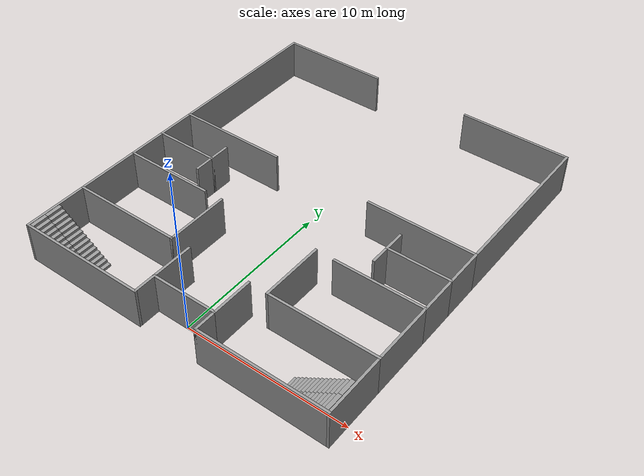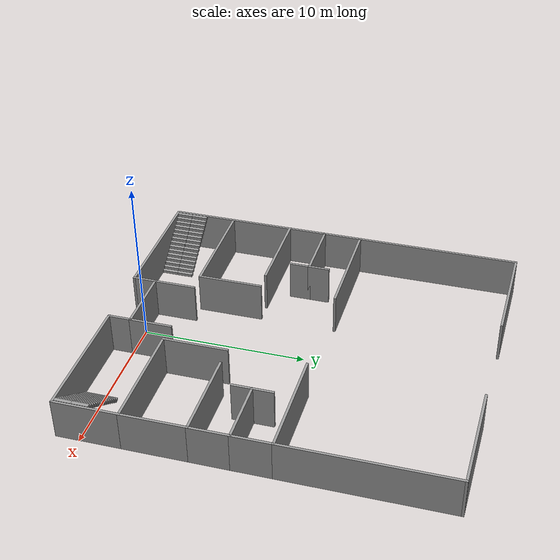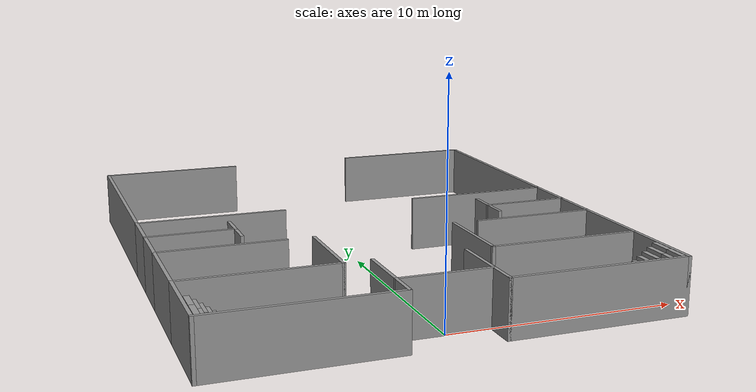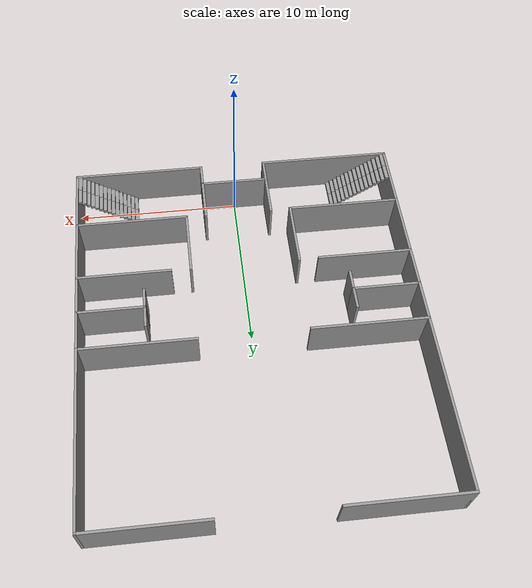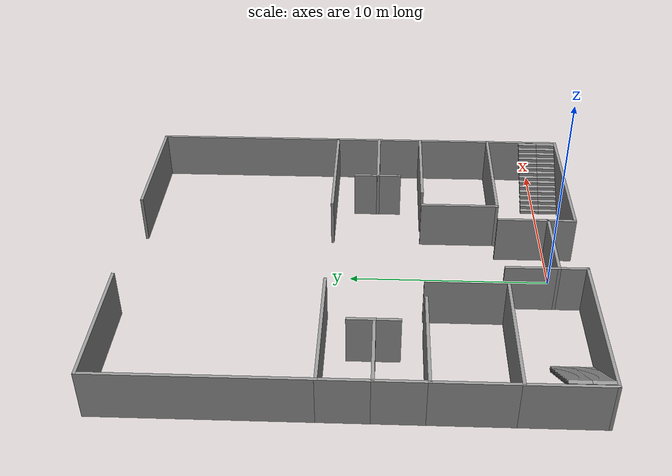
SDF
<sdf version="1.6">
 <model name="hospital">
  <pose>0 9.85 0 0 -0 0</pose>
  <link name="Stairs_0">
   <visual name="Stairs_0_Visual_0">
    <pose>-6.37478 -10.6397 0.083333 0 -0 -1.5708</pose>
    <geometry><box><size>1 0.233333 0.166667</size></box></geometry>
    <material>
     <script><uri>file://media/materials/scripts/gazebo.material</uri><name>Gazebo/Grey</name></script>
     <ambient>1 1 1 1</ambient>
    </material>
    <meta><layer>0</layer></meta>
   </visual>
   <collision name="Stairs_0_Collision_0">
    <geometry><box><size>1 0.233333 0.166667</size></box></geometry>
    <pose>-6.37478 -10.6397 0.083333 0 -0 -1.5708</pose>
   </collision>
   <visual name="Stairs_0_Visual_1">
    <pose>-6.60811 -10.6397 0.25 0 -0 -1.5708</pose>
    <geometry><box><size>1 0.233333 0.166667</size></box></geometry>
    <material>
     <script><uri>file://media/materials/scripts/gazebo.material</uri><name>Gazebo/Grey</name></script>
     <ambient>1 1 1 1</ambient>
    </material>
    <meta><layer>0</layer></meta>
   </visual>
   <collision name="Stairs_0_Collision_1">
    <geometry><box><size>1 0.233333 0.166667</size></box></geometry>
    <pose>-6.60811 -10.6397 0.25 0 -0 -1.5708</pose>
   </collision>
   <visual name="Stairs_0_Visual_2">
    <pose>-6.84145 -10.6397 0.416667 0 -0 -1.5708</pose>
    <geometry><box><size>1 0.233333 0.166667</size></box></geometry>
    <material>
     <script><uri>file://media/materials/scripts/gazebo.material</uri><name>Gazebo/Grey</name></script>
     <ambient>1 1 1 1</ambient>
    </material>
    <meta><layer>0</layer></meta>
   </visual>
   <collision name="Stairs_0_Collision_2">
    <geometry><box><size>1 0.233333 0.166667</size></box></geometry>
    <pose>-6.84145 -10.6397 0.416667 0 -0 -1.5708</pose>
   </collision>
   <visual name="Stairs_0_Visual_3">
    <pose>-7.07478 -10.6397 0.583333 0 -0 -1.5708</pose>
    <geometry><box><size>1 0.233333 0.166667</size></box></geometry>
    <material>
     <script><uri>file://media/materials/scripts/gazebo.material</uri><name>Gazebo/Grey</name></script>
     <ambient>1 1 1 1</ambient>
    </material>
    <meta><layer>0</layer></meta>
   </visual>
   <collision name="Stairs_0_Collision_3">
    <geometry><box><size>1 0.233333 0.166667</size></box></geometry>
    <pose>-7.07478 -10.6397 0.583333 0 -0 -1.5708</pose>
   </collision>
   <visual name="Stairs_0_Visual_4">
    <pose>-7.30811 -10.6397 0.75 0 -0 -1.5708</pose>
    <geometry><box><size>1 0.233333 0.166667</size></box></geometry>
    <material>
     <script><uri>file://media/materials/scripts/gazebo.material</uri><name>Gazebo/Grey</name></script>
     <ambient>1 1 1 1</ambient>
    </material>
    <meta><layer>0</layer></meta>
   </visual>
   <collision name="Stairs_0_Collision_4">
    <geometry><box><size>1 0.233333 0.166667</size></box></geometry>
    <pose>-7.30811 -10.6397 0.75 0 -0 -1.5708</pose>
   </collision>
   <visual name="Stairs_0_Visual_5">
    <pose>-7.54145 -10.6397 0.916667 0 -0 -1.5708</pose>
    <geometry><box><size>1 0.233333 0.166667</size></box></geometry>
    <material>
     <script><uri>file://media/materials/scripts/gazebo.material</uri><name>Gazebo/Grey</name></script>
     <ambient>1 1 1 1</ambient>
    </material>
    <meta><layer>0</layer></meta>
   </visual>
   <collision name="Stairs_0_Collision_5">
    <geometry><box><size>1 0.233333 0.166667</size></box></geometry>
    <pose>-7.54145 -10.6397 0.916667 0 -0 -1.5708</pose>
   </collision>
   <visual name="Stairs_0_Visual_6">
    <pose>-7.77478 -10.6397 1.08333 0 -0 -1.5708</pose>
    <geometry><box><size>1 0.233333 0.166667</size></box></geometry>
    <material>
     <script><uri>file://media/materials/scripts/gazebo.material</uri><name>Gazebo/Grey</name></script>
     <ambient>1 1 1 1</ambient>
    </material>
    <meta><layer>0</layer></meta>
   </visual>
   <collision name="Stairs_0_Collision_6">
    <geometry><box><size>1 0.233333 0.166667</size></box></geometry>
    <pose>-7.77478 -10.6397 1.08333 0 -0 -1.5708</pose>
   </collision>
   <visual name="Stairs_0_Visual_7">
    <pose>-8.00811 -10.6397 1.25 0 -0 -1.5708</pose>
    <geometry><box><size>1 0.233333 0.166667</size></box></geometry>
    <material>
     <script><uri>file://media/materials/scripts/gazebo.material</uri><name>Gazebo/Grey</name></script>
     <ambient>1 1 1 1</ambient>
    </material>
    <meta><layer>0</layer></meta>
   </visual>
   <collision name="Stairs_0_Collision_7">
    <geometry><box><size>1 0.233333 0.166667</size></box></geometry>
    <pose>-8.00811 -10.6397 1.25 0 -0 -1.5708</pose>
   </collision>
   <visual name="Stairs_0_Visual_8">
    <pose>-8.24145 -10.6397 1.41667 0 -0 -1.5708</pose>
    <geometry><box><size>1 0.233333 0.166667</size></box></geometry>
    <material>
     <script><uri>file://media/materials/scripts/gazebo.material</uri><name>Gazebo/Grey</name></script>
     <ambient>1 1 1 1</ambient>
    </material>
    <meta><layer>0</layer></meta>
   </visual>
   <collision name="Stairs_0_Collision_8">
    <geometry><box><size>1 0.233333 0.166667</size></box></geometry>
    <pose>-8.24145 -10.6397 1.41667 0 -0 -1.5708</pose>
   </collision>
   <visual name="Stairs_0_Visual_9">
    <pose>-8.47478 -10.6397 1.58333 0 -0 -1.5708</pose>
    <geometry><box><size>1 0.233333 0.166667</size></box></geometry>
    <material>
     <script><uri>file://media/materials/scripts/gazebo.material</uri><name>Gazebo/Grey</name></script>
     <ambient>1 1 1 1</ambient>
    </material>
    <meta><layer>0</layer></meta>
   </visual>
   <collision name="Stairs_0_Collision_9">
    <geometry><box><size>1 0.233333 0.166667</size></box></geometry>
    <pose>-8.47478 -10.6397 1.58333 0 -0 -1.5708</pose>
   </collision>
   <visual name="Stairs_0_Visual_10">
    <pose>-8.70811 -10.6397 1.75 0 -0 -1.5708</pose>
    <geometry><box><size>1 0.233333 0.166667</size></box></geometry>
    <material>
     <script><uri>file://media/materials/scripts/gazebo.material</uri><name>Gazebo/Grey</name></script>
     <ambient>1 1 1 1</ambient>
    </material>
    <meta><layer>0</layer></meta>
   </visual>
   <collision name="Stairs_0_Collision_10">
    <geometry><box><size>1 0.233333 0.166667</size></box></geometry>
    <pose>-8.70811 -10.6397 1.75 0 -0 -1.5708</pose>
   </collision>
   <visual name="Stairs_0_Visual_11">
    <pose>-8.94144 -10.6397 1.91667 0 -0 -1.5708</pose>
    <geometry><box><size>1 0.233333 0.166667</size></box></geometry>
    <material>
     <script><uri>file://media/materials/scripts/gazebo.material</uri><name>Gazebo/Grey</name></script>
     <ambient>1 1 1 1</ambient>
    </material>
    <meta><layer>0</layer></meta>
   </visual>
   <collision name="Stairs_0_Collision_11">
    <geometry><box><size>1 0.233333 0.166667</size></box></geometry>
    <pose>-8.94144 -10.6397 1.91667 0 -0 -1.5708</pose>
   </collision>
   <visual name="Stairs_0_Visual_12">
    <pose>-9.17478 -10.6397 2.08333 0 -0 -1.5708</pose>
    <geometry><box><size>1 0.233333 0.166667</size></box></geometry>
    <material>
     <script><uri>file://media/materials/scripts/gazebo.material</uri><name>Gazebo/Grey</name></script>
     <ambient>1 1 1 1</ambient>
    </material>
    <meta><layer>0</layer></meta>
   </visual>
   <collision name="Stairs_0_Collision_12">
    <geometry><box><size>1 0.233333 0.166667</size></box></geometry>
    <pose>-9.17478 -10.6397 2.08333 0 -0 -1.5708</pose>
   </collision>
   <visual name="Stairs_0_Visual_13">
    <pose>-9.40811 -10.6397 2.25 0 -0 -1.5708</pose>
    <geometry><box><size>1 0.233333 0.166667</size></box></geometry>
    <material>
     <script><uri>file://media/materials/scripts/gazebo.material</uri><name>Gazebo/Grey</name></script>
     <ambient>1 1 1 1</ambient>
    </material>
    <meta><layer>0</layer></meta>
   </visual>
   <collision name="Stairs_0_Collision_13">
    <geometry><box><size>1 0.233333 0.166667</size></box></geometry>
    <pose>-9.40811 -10.6397 2.25 0 -0 -1.5708</pose>
   </collision>
   <visual name="Stairs_0_Visual_14">
    <pose>-9.64144 -10.6397 2.41667 0 -0 -1.5708</pose>
    <geometry><box><size>1 0.233333 0.166667</size></box></geometry>
    <material>
     <script><uri>file://media/materials/scripts/gazebo.material</uri><name>Gazebo/Grey</name></script>
     <ambient>1 1 1 1</ambient>
    </material>
    <meta><layer>0</layer></meta>
   </visual>
   <collision name="Stairs_0_Collision_14">
    <geometry><box><size>1 0.233333 0.166667</size></box></geometry>
    <pose>-9.64144 -10.6397 2.41667 0 -0 -1.5708</pose>
   </collision>
  </link>
  <link name="Stairs_1">
   <visual name="Stairs_1_Visual_0">
    <pose>-6.37478 -9.63924 0.083333 0 -0 -1.5708</pose>
    <geometry><box><size>1 0.233333 0.166667</size></box></geometry>
    <material>
     <script><uri>file://media/materials/scripts/gazebo.material</uri><name>Gazebo/Grey</name></script>
     <ambient>1 1 1 1</ambient>
    </material>
    <meta><layer>0</layer></meta>
   </visual>
   <collision name="Stairs_1_Collision_0">
    <geometry><box><size>1 0.233333 0.166667</size></box></geometry>
    <pose>-6.37478 -9.63924 0.083333 0 -0 -1.5708</pose>
   </collision>
   <visual name="Stairs_1_Visual_1">
    <pose>-6.60811 -9.63924 0.25 0 -0 -1.5708</pose>
    <geometry><box><size>1 0.233333 0.166667</size></box></geometry>
    <material>
     <script><uri>file://media/materials/scripts/gazebo.material</uri><name>Gazebo/Grey</name></script>
     <ambient>1 1 1 1</ambient>
    </material>
    <meta><layer>0</layer></meta>
   </visual>
   <collision name="Stairs_1_Collision_1">
    <geometry><box><size>1 0.233333 0.166667</size></box></geometry>
    <pose>-6.60811 -9.63924 0.25 0 -0 -1.5708</pose>
   </collision>
   <visual name="Stairs_1_Visual_2">
    <pose>-6.84145 -9.63924 0.416667 0 -0 -1.5708</pose>
    <geometry><box><size>1 0.233333 0.166667</size></box></geometry>
    <material>
     <script><uri>file://media/materials/scripts/gazebo.material</uri><name>Gazebo/Grey</name></script>
     <ambient>1 1 1 1</ambient>
    </material>
    <meta><layer>0</layer></meta>
   </visual>
   <collision name="Stairs_1_Collision_2">
    <geometry><box><size>1 0.233333 0.166667</size></box></geometry>
    <pose>-6.84145 -9.63924 0.416667 0 -0 -1.5708</pose>
   </collision>
   <visual name="Stairs_1_Visual_3">
    <pose>-7.07478 -9.63924 0.583333 0 -0 -1.5708</pose>
    <geometry><box><size>1 0.233333 0.166667</size></box></geometry>
    <material>
     <script><uri>file://media/materials/scripts/gazebo.material</uri><name>Gazebo/Grey</name></script>
     <ambient>1 1 1 1</ambient>
    </material>
    <meta><layer>0</layer></meta>
   </visual>
   <collision name="Stairs_1_Collision_3">
    <geometry><box><size>1 0.233333 0.166667</size></box></geometry>
    <pose>-7.07478 -9.63924 0.583333 0 -0 -1.5708</pose>
   </collision>
   <visual name="Stairs_1_Visual_4">
    <pose>-7.30811 -9.63924 0.75 0 -0 -1.5708</pose>
    <geometry><box><size>1 0.233333 0.166667</size></box></geometry>
    <material>
     <script><uri>file://media/materials/scripts/gazebo.material</uri><name>Gazebo/Grey</name></script>
     <ambient>1 1 1 1</ambient>
    </material>
    <meta><layer>0</layer></meta>
   </visual>
   <collision name="Stairs_1_Collision_4">
    <geometry><box><size>1 0.233333 0.166667</size></box></geometry>
    <pose>-7.30811 -9.63924 0.75 0 -0 -1.5708</pose>
   </collision>
   <visual name="Stairs_1_Visual_5">
    <pose>-7.54145 -9.63924 0.916667 0 -0 -1.5708</pose>
    <geometry><box><size>1 0.233333 0.166667</size></box></geometry>
    <material>
     <script><uri>file://media/materials/scripts/gazebo.material</uri><name>Gazebo/Grey</name></script>
     <ambient>1 1 1 1</ambient>
    </material>
    <meta><layer>0</layer></meta>
   </visual>
   <collision name="Stairs_1_Collision_5">
    <geometry><box><size>1 0.233333 0.166667</size></box></geometry>
    <pose>-7.54145 -9.63924 0.916667 0 -0 -1.5708</pose>
   </collision>
   <visual name="Stairs_1_Visual_6">
    <pose>-7.77478 -9.63924 1.08333 0 -0 -1.5708</pose>
    <geometry><box><size>1 0.233333 0.166667</size></box></geometry>
    <material>
     <script><uri>file://media/materials/scripts/gazebo.material</uri><name>Gazebo/Grey</name></script>
     <ambient>1 1 1 1</ambient>
    </material>
    <meta><layer>0</layer></meta>
   </visual>
   <collision name="Stairs_1_Collision_6">
    <geometry><box><size>1 0.233333 0.166667</size></box></geometry>
    <pose>-7.77478 -9.63924 1.08333 0 -0 -1.5708</pose>
   </collision>
   <visual name="Stairs_1_Visual_7">
    <pose>-8.00811 -9.63924 1.25 0 -0 -1.5708</pose>
    <geometry><box><size>1 0.233333 0.166667</size></box></geometry>
    <material>
     <script><uri>file://media/materials/scripts/gazebo.material</uri><name>Gazebo/Grey</name></script>
     <ambient>1 1 1 1</ambient>
    </material>
    <meta><layer>0</layer></meta>
   </visual>
   <collision name="Stairs_1_Collision_7">
    <geometry><box><size>1 0.233333 0.166667</size></box></geometry>
    <pose>-8.00811 -9.63924 1.25 0 -0 -1.5708</pose>
   </collision>
   <visual name="Stairs_1_Visual_8">
    <pose>-8.24145 -9.63924 1.41667 0 -0 -1.5708</pose>
    <geometry><box><size>1 0.233333 0.166667</size></box></geometry>
    <material>
     <script><uri>file://media/materials/scripts/gazebo.material</uri><name>Gazebo/Grey</name></script>
     <ambient>1 1 1 1</ambient>
    </material>
    <meta><layer>0</layer></meta>
   </visual>
   <collision name="Stairs_1_Collision_8">
    <geometry><box><size>1 0.233333 0.166667</size></box></geometry>
    <pose>-8.24145 -9.63924 1.41667 0 -0 -1.5708</pose>
   </collision>
   <visual name="Stairs_1_Visual_9">
    <pose>-8.47478 -9.63924 1.58333 0 -0 -1.5708</pose>
    <geometry><box><size>1 0.233333 0.166667</size></box></geometry>
    <material>
     <script><uri>file://media/materials/scripts/gazebo.material</uri><name>Gazebo/Grey</name></script>
     <ambient>1 1 1 1</ambient>
    </material>
    <meta><layer>0</layer></meta>
   </visual>
   <collision name="Stairs_1_Collision_9">
    <geometry><box><size>1 0.233333 0.166667</size></box></geometry>
    <pose>-8.47478 -9.63924 1.58333 0 -0 -1.5708</pose>
   </collision>
   <visual name="Stairs_1_Visual_10">
    <pose>-8.70811 -9.63924 1.75 0 -0 -1.5708</pose>
    <geometry><box><size>1 0.233333 0.166667</size></box></geometry>
    <material>
     <script><uri>file://media/materials/scripts/gazebo.material</uri><name>Gazebo/Grey</name></script>
     <ambient>1 1 1 1</ambient>
    </material>
    <meta><layer>0</layer></meta>
   </visual>
   <collision name="Stairs_1_Collision_10">
    <geometry><box><size>1 0.233333 0.166667</size></box></geometry>
    <pose>-8.70811 -9.63924 1.75 0 -0 -1.5708</pose>
   </collision>
   <visual name="Stairs_1_Visual_11">
    <pose>-8.94144 -9.63924 1.91667 0 -0 -1.5708</pose>
    <geometry><box><size>1 0.233333 0.166667</size></box></geometry>
    <material>
     <script><uri>file://media/materials/scripts/gazebo.material</uri><name>Gazebo/Grey</name></script>
     <ambient>1 1 1 1</ambient>
    </material>
    <meta><layer>0</layer></meta>
   </visual>
   <collision name="Stairs_1_Collision_11">
    <geometry><box><size>1 0.233333 0.166667</size></box></geometry>
    <pose>-8.94144 -9.63924 1.91667 0 -0 -1.5708</pose>
   </collision>
   <visual name="Stairs_1_Visual_12">
    <pose>-9.17478 -9.63924 2.08333 0 -0 -1.5708</pose>
    <geometry><box><size>1 0.233333 0.166667</size></box></geometry>
    <material>
     <script><uri>file://media/materials/scripts/gazebo.material</uri><name>Gazebo/Grey</name></script>
     <ambient>1 1 1 1</ambient>
    </material>
    <meta><layer>0</layer></meta>
   </visual>
   <collision name="Stairs_1_Collision_12">
    <geometry><box><size>1 0.233333 0.166667</size></box></geometry>
    <pose>-9.17478 -9.63924 2.08333 0 -0 -1.5708</pose>
   </collision>
   <visual name="Stairs_1_Visual_13">
    <pose>-9.40811 -9.63924 2.25 0 -0 -1.5708</pose>
    <geometry><box><size>1 0.233333 0.166667</size></box></geometry>
    <material>
     <script><uri>file://media/materials/scripts/gazebo.material</uri><name>Gazebo/Grey</name></script>
     <ambient>1 1 1 1</ambient>
    </material>
    <meta><layer>0</layer></meta>
   </visual>
   <collision name="Stairs_1_Collision_13">
    <geometry><box><size>1 0.233333 0.166667</size></box></geometry>
    <pose>-9.40811 -9.63924 2.25 0 -0 -1.5708</pose>
   </collision>
   <visual name="Stairs_1_Visual_14">
    <pose>-9.64144 -9.63924 2.41667 0 -0 -1.5708</pose>
    <geometry><box><size>1 0.233333 0.166667</size></box></geometry>
    <material>
     <script><uri>file://media/materials/scripts/gazebo.material</uri><name>Gazebo/Grey</name></script>
     <ambient>1 1 1 1</ambient>
    </material>
    <meta><layer>0</layer></meta>
   </visual>
   <collision name="Stairs_1_Collision_14">
    <geometry><box><size>1 0.233333 0.166667</size></box></geometry>
    <pose>-9.64144 -9.63924 2.41667 0 -0 -1.5708</pose>
   </collision>
  </link>
  <link name="Stairs_2">
   <visual name="Stairs_2_Visual_0">
    <pose>6.37637 -10.6246 0.083333 0 -0 1.5708</pose>
    <geometry><box><size>1 0.233333 0.166667</size></box></geometry>
    <material>
     <script><uri>file://media/materials/scripts/gazebo.material</uri><name>Gazebo/Grey</name></script>
     <ambient>1 1 1 1</ambient>
    </material>
    <meta><layer>0</layer></meta>
   </visual>
   <collision name="Stairs_2_Collision_0">
    <geometry><box><size>1 0.233333 0.166667</size></box></geometry>
    <pose>6.37637 -10.6246 0.083333 0 -0 1.5708</pose>
   </collision>
   <visual name="Stairs_2_Visual_1">
    <pose>6.6097 -10.6246 0.25 0 -0 1.5708</pose>
    <geometry><box><size>1 0.233333 0.166667</size></box></geometry>
    <material>
     <script><uri>file://media/materials/scripts/gazebo.material</uri><name>Gazebo/Grey</name></script>
     <ambient>1 1 1 1</ambient>
    </material>
    <meta><layer>0</layer></meta>
   </visual>
   <collision name="Stairs_2_Collision_1">
    <geometry><box><size>1 0.233333 0.166667</size></box></geometry>
    <pose>6.6097 -10.6246 0.25 0 -0 1.5708</pose>
   </collision>
   <visual name="Stairs_2_Visual_2">
    <pose>6.84304 -10.6246 0.416667 0 -0 1.5708</pose>
    <geometry><box><size>1 0.233333 0.166667</size></box></geometry>
    <material>
     <script><uri>file://media/materials/scripts/gazebo.material</uri><name>Gazebo/Grey</name></script>
     <ambient>1 1 1 1</ambient>
    </material>
    <meta><layer>0</layer></meta>
   </visual>
   <collision name="Stairs_2_Collision_2">
    <geometry><box><size>1 0.233333 0.166667</size></box></geometry>
    <pose>6.84304 -10.6246 0.416667 0 -0 1.5708</pose>
   </collision>
   <visual name="Stairs_2_Visual_3">
    <pose>7.07637 -10.6246 0.583333 0 -0 1.5708</pose>
    <geometry><box><size>1 0.233333 0.166667</size></box></geometry>
    <material>
     <script><uri>file://media/materials/scripts/gazebo.material</uri><name>Gazebo/Grey</name></script>
     <ambient>1 1 1 1</ambient>
    </material>
    <meta><layer>0</layer></meta>
   </visual>
   <collision name="Stairs_2_Collision_3">
    <geometry><box><size>1 0.233333 0.166667</size></box></geometry>
    <pose>7.07637 -10.6246 0.583333 0 -0 1.5708</pose>
   </collision>
   <visual name="Stairs_2_Visual_4">
    <pose>7.3097 -10.6246 0.75 0 -0 1.5708</pose>
    <geometry><box><size>1 0.233333 0.166667</size></box></geometry>
    <material>
     <script><uri>file://media/materials/scripts/gazebo.material</uri><name>Gazebo/Grey</name></script>
     <ambient>1 1 1 1</ambient>
    </material>
    <meta><layer>0</layer></meta>
   </visual>
   <collision name="Stairs_2_Collision_4">
    <geometry><box><size>1 0.233333 0.166667</size></box></geometry>
    <pose>7.3097 -10.6246 0.75 0 -0 1.5708</pose>
   </collision>
   <visual name="Stairs_2_Visual_5">
    <pose>7.54304 -10.6246 0.916667 0 -0 1.5708</pose>
    <geometry><box><size>1 0.233333 0.166667</size></box></geometry>
    <material>
     <script><uri>file://media/materials/scripts/gazebo.material</uri><name>Gazebo/Grey</name></script>
     <ambient>1 1 1 1</ambient>
    </material>
    <meta><layer>0</layer></meta>
   </visual>
   <collision name="Stairs_2_Collision_5">
    <geometry><box><size>1 0.233333 0.166667</size></box></geometry>
    <pose>7.54304 -10.6246 0.916667 0 -0 1.5708</pose>
   </collision>
   <visual name="Stairs_2_Visual_6">
    <pose>7.77637 -10.6246 1.08333 0 -0 1.5708</pose>
    <geometry><box><size>1 0.233333 0.166667</size></box></geometry>
    <material>
     <script><uri>file://media/materials/scripts/gazebo.material</uri><name>Gazebo/Grey</name></script>
     <ambient>1 1 1 1</ambient>
    </material>
    <meta><layer>0</layer></meta>
   </visual>
   <collision name="Stairs_2_Collision_6">
    <geometry><box><size>1 0.233333 0.166667</size></box></geometry>
    <pose>7.77637 -10.6246 1.08333 0 -0 1.5708</pose>
   </collision>
   <visual name="Stairs_2_Visual_7">
    <pose>8.0097 -10.6246 1.25 0 -0 1.5708</pose>
    <geometry><box><size>1 0.233333 0.166667</size></box></geometry>
    <material>
     <script><uri>file://media/materials/scripts/gazebo.material</uri><name>Gazebo/Grey</name></script>
     <ambient>1 1 1 1</ambient>
    </material>
    <meta><layer>0</layer></meta>
   </visual>
   <collision name="Stairs_2_Collision_7">
    <geometry><box><size>1 0.233333 0.166667</size></box></geometry>
    <pose>8.0097 -10.6246 1.25 0 -0 1.5708</pose>
   </collision>
   <visual name="Stairs_2_Visual_8">
    <pose>8.24304 -10.6246 1.41667 0 -0 1.5708</pose>
    <geometry><box><size>1 0.233333 0.166667</size></box></geometry>
    <material>
     <script><uri>file://media/materials/scripts/gazebo.material</uri><name>Gazebo/Grey</name></script>
     <ambient>1 1 1 1</ambient>
    </material>
    <meta><layer>0</layer></meta>
   </visual>
   <collision name="Stairs_2_Collision_8">
    <geometry><box><size>1 0.233333 0.166667</size></box></geometry>
    <pose>8.24304 -10.6246 1.41667 0 -0 1.5708</pose>
   </collision>
   <visual name="Stairs_2_Visual_9">
    <pose>8.47637 -10.6246 1.58333 0 -0 1.5708</pose>
    <geometry><box><size>1 0.233333 0.166667</size></box></geometry>
    <material>
     <script><uri>file://media/materials/scripts/gazebo.material</uri><name>Gazebo/Grey</name></script>
     <ambient>1 1 1 1</ambient>
    </material>
    <meta><layer>0</layer></meta>
   </visual>
   <collision name="Stairs_2_Collision_9">
    <geometry><box><size>1 0.233333 0.166667</size></box></geometry>
    <pose>8.47637 -10.6246 1.58333 0 -0 1.5708</pose>
   </collision>
   <visual name="Stairs_2_Visual_10">
    <pose>8.7097 -10.6246 1.75 0 -0 1.5708</pose>
    <geometry><box><size>1 0.233333 0.166667</size></box></geometry>
    <material>
     <script><uri>file://media/materials/scripts/gazebo.material</uri><name>Gazebo/Grey</name></script>
     <ambient>1 1 1 1</ambient>
    </material>
    <meta><layer>0</layer></meta>
   </visual>
   <collision name="Stairs_2_Collision_10">
    <geometry><box><size>1 0.233333 0.166667</size></box></geometry>
    <pose>8.7097 -10.6246 1.75 0 -0 1.5708</pose>
   </collision>
   <visual name="Stairs_2_Visual_11">
    <pose>8.94304 -10.6246 1.91667 0 -0 1.5708</pose>
    <geometry><box><size>1 0.233333 0.166667</size></box></geometry>
    <material>
     <script><uri>file://media/materials/scripts/gazebo.material</uri><name>Gazebo/Grey</name></script>
     <ambient>1 1 1 1</ambient>
    </material>
    <meta><layer>0</layer></meta>
   </visual>
   <collision name="Stairs_2_Collision_11">
    <geometry><box><size>1 0.233333 0.166667</size></box></geometry>
    <pose>8.94304 -10.6246 1.91667 0 -0 1.5708</pose>
   </collision>
   <visual name="Stairs_2_Visual_12">
    <pose>9.17637 -10.6246 2.08333 0 -0 1.5708</pose>
    <geometry><box><size>1 0.233333 0.166667</size></box></geometry>
    <material>
     <script><uri>file://media/materials/scripts/gazebo.material</uri><name>Gazebo/Grey</name></script>
     <ambient>1 1 1 1</ambient>
    </material>
    <meta><layer>0</layer></meta>
   </visual>
   <collision name="Stairs_2_Collision_12">
    <geometry><box><size>1 0.233333 0.166667</size></box></geometry>
    <pose>9.17637 -10.6246 2.08333 0 -0 1.5708</pose>
   </collision>
   <visual name="Stairs_2_Visual_13">
    <pose>9.4097 -10.6246 2.25 0 -0 1.5708</pose>
    <geometry><box><size>1 0.233333 0.166667</size></box></geometry>
    <material>
     <script><uri>file://media/materials/scripts/gazebo.material</uri><name>Gazebo/Grey</name></script>
     <ambient>1 1 1 1</ambient>
    </material>
    <meta><layer>0</layer></meta>
   </visual>
   <collision name="Stairs_2_Collision_13">
    <geometry><box><size>1 0.233333 0.166667</size></box></geometry>
    <pose>9.4097 -10.6246 2.25 0 -0 1.5708</pose>
   </collision>
   <visual name="Stairs_2_Visual_14">
    <pose>9.64304 -10.6246 2.41667 0 -0 1.5708</pose>
    <geometry><box><size>1 0.233333 0.166667</size></box></geometry>
    <material>
     <script><uri>file://media/materials/scripts/gazebo.material</uri><name>Gazebo/Grey</name></script>
     <ambient>1 1 1 1</ambient>
    </material>
    <meta><layer>0</layer></meta>
   </visual>
   <collision name="Stairs_2_Collision_14">
    <geometry><box><size>1 0.233333 0.166667</size></box></geometry>
    <pose>9.64304 -10.6246 2.41667 0 -0 1.5708</pose>
   </collision>
  </link>
  <link name="Stairs_4">
   <visual name="Stairs_4_Visual_0">
    <pose>6.37637 -9.62411 0.083333 0 -0 1.5708</pose>
    <geometry><box><size>1 0.233333 0.166667</size></box></geometry>
    <material>
     <script><uri>file://media/materials/scripts/gazebo.material</uri><name>Gazebo/Grey</name></script>
     <ambient>1 1 1 1</ambient>
    </material>
    <meta><layer>0</layer></meta>
   </visual>
   <collision name="Stairs_4_Collision_0">
    <geometry><box><size>1 0.233333 0.166667</size></box></geometry>
    <pose>6.37637 -9.62411 0.083333 0 -0 1.5708</pose>
   </collision>
   <visual name="Stairs_4_Visual_1">
    <pose>6.6097 -9.62411 0.25 0 -0 1.5708</pose>
    <geometry><box><size>1 0.233333 0.166667</size></box></geometry>
    <material>
     <script><uri>file://media/materials/scripts/gazebo.material</uri><name>Gazebo/Grey</name></script>
     <ambient>1 1 1 1</ambient>
    </material>
    <meta><layer>0</layer></meta>
   </visual>
   <collision name="Stairs_4_Collision_1">
    <geometry><box><size>1 0.233333 0.166667</size></box></geometry>
    <pose>6.6097 -9.62411 0.25 0 -0 1.5708</pose>
   </collision>
   <visual name="Stairs_4_Visual_2">
    <pose>6.84304 -9.62411 0.416667 0 -0 1.5708</pose>
    <geometry><box><size>1 0.233333 0.166667</size></box></geometry>
    <material>
     <script><uri>file://media/materials/scripts/gazebo.material</uri><name>Gazebo/Grey</name></script>
     <ambient>1 1 1 1</ambient>
    </material>
    <meta><layer>0</layer></meta>
   </visual>
   <collision name="Stairs_4_Collision_2">
    <geometry><box><size>1 0.233333 0.166667</size></box></geometry>
    <pose>6.84304 -9.62411 0.416667 0 -0 1.5708</pose>
   </collision>
   <visual name="Stairs_4_Visual_3">
    <pose>7.07637 -9.62411 0.583333 0 -0 1.5708</pose>
    <geometry><box><size>1 0.233333 0.166667</size></box></geometry>
    <material>
     <script><uri>file://media/materials/scripts/gazebo.material</uri><name>Gazebo/Grey</name></script>
     <ambient>1 1 1 1</ambient>
    </material>
    <meta><layer>0</layer></meta>
   </visual>
   <collision name="Stairs_4_Collision_3">
    <geometry><box><size>1 0.233333 0.166667</size></box></geometry>
    <pose>7.07637 -9.62411 0.583333 0 -0 1.5708</pose>
   </collision>
   <visual name="Stairs_4_Visual_4">
    <pose>7.3097 -9.62411 0.75 0 -0 1.5708</pose>
    <geometry><box><size>1 0.233333 0.166667</size></box></geometry>
    <material>
     <script><uri>file://media/materials/scripts/gazebo.material</uri><name>Gazebo/Grey</name></script>
     <ambient>1 1 1 1</ambient>
    </material>
    <meta><layer>0</layer></meta>
   </visual>
   <collision name="Stairs_4_Collision_4">
    <geometry><box><size>1 0.233333 0.166667</size></box></geometry>
    <pose>7.3097 -9.62411 0.75 0 -0 1.5708</pose>
   </collision>
   <visual name="Stairs_4_Visual_5">
    <pose>7.54304 -9.62411 0.916667 0 -0 1.5708</pose>
    <geometry><box><size>1 0.233333 0.166667</size></box></geometry>
    <material>
     <script><uri>file://media/materials/scripts/gazebo.material</uri><name>Gazebo/Grey</name></script>
     <ambient>1 1 1 1</ambient>
    </material>
    <meta><layer>0</layer></meta>
   </visual>
   <collision name="Stairs_4_Collision_5">
    <geometry><box><size>1 0.233333 0.166667</size></box></geometry>
    <pose>7.54304 -9.62411 0.916667 0 -0 1.5708</pose>
   </collision>
   <visual name="Stairs_4_Visual_6">
    <pose>7.77637 -9.62411 1.08333 0 -0 1.5708</pose>
    <geometry><box><size>1 0.233333 0.166667</size></box></geometry>
    <material>
     <script><uri>file://media/materials/scripts/gazebo.material</uri><name>Gazebo/Grey</name></script>
     <ambient>1 1 1 1</ambient>
    </material>
    <meta><layer>0</layer></meta>
   </visual>
   <collision name="Stairs_4_Collision_6">
    <geometry><box><size>1 0.233333 0.166667</size></box></geometry>
    <pose>7.77637 -9.62411 1.08333 0 -0 1.5708</pose>
   </collision>
   <visual name="Stairs_4_Visual_7">
    <pose>8.0097 -9.62411 1.25 0 -0 1.5708</pose>
    <geometry><box><size>1 0.233333 0.166667</size></box></geometry>
    <material>
     <script><uri>file://media/materials/scripts/gazebo.material</uri><name>Gazebo/Grey</name></script>
     <ambient>1 1 1 1</ambient>
    </material>
    <meta><layer>0</layer></meta>
   </visual>
   <collision name="Stairs_4_Collision_7">
    <geometry><box><size>1 0.233333 0.166667</size></box></geometry>
    <pose>8.0097 -9.62411 1.25 0 -0 1.5708</pose>
   </collision>
   <visual name="Stairs_4_Visual_8">
    <pose>8.24304 -9.62411 1.41667 0 -0 1.5708</pose>
    <geometry><box><size>1 0.233333 0.166667</size></box></geometry>
    <material>
     <script><uri>file://media/materials/scripts/gazebo.material</uri><name>Gazebo/Grey</name></script>
     <ambient>1 1 1 1</ambient>
    </material>
    <meta><layer>0</layer></meta>
   </visual>
   <collision name="Stairs_4_Collision_8">
    <geometry><box><size>1 0.233333 0.166667</size></box></geometry>
    <pose>8.24304 -9.62411 1.41667 0 -0 1.5708</pose>
   </collision>
   <visual name="Stairs_4_Visual_9">
    <pose>8.47637 -9.62411 1.58333 0 -0 1.5708</pose>
    <geometry><box><size>1 0.233333 0.166667</size></box></geometry>
    <material>
     <script><uri>file://media/materials/scripts/gazebo.material</uri><name>Gazebo/Grey</name></script>
     <ambient>1 1 1 1</ambient>
    </material>
    <meta><layer>0</layer></meta>
   </visual>
   <collision name="Stairs_4_Collision_9">
    <geometry><box><size>1 0.233333 0.166667</size></box></geometry>
    <pose>8.47637 -9.62411 1.58333 0 -0 1.5708</pose>
   </collision>
   <visual name="Stairs_4_Visual_10">
    <pose>8.7097 -9.62411 1.75 0 -0 1.5708</pose>
    <geometry><box><size>1 0.233333 0.166667</size></box></geometry>
    <material>
     <script><uri>file://media/materials/scripts/gazebo.material</uri><name>Gazebo/Grey</name></script>
     <ambient>1 1 1 1</ambient>
    </material>
    <meta><layer>0</layer></meta>
   </visual>
   <collision name="Stairs_4_Collision_10">
    <geometry><box><size>1 0.233333 0.166667</size></box></geometry>
    <pose>8.7097 -9.62411 1.75 0 -0 1.5708</pose>
   </collision>
   <visual name="Stairs_4_Visual_11">
    <pose>8.94304 -9.62411 1.91667 0 -0 1.5708</pose>
    <geometry><box><size>1 0.233333 0.166667</size></box></geometry>
    <material>
     <script><uri>file://media/materials/scripts/gazebo.material</uri><name>Gazebo/Grey</name></script>
     <ambient>1 1 1 1</ambient>
    </material>
    <meta><layer>0</layer></meta>
   </visual>
   <collision name="Stairs_4_Collision_11">
    <geometry><box><size>1 0.233333 0.166667</size></box></geometry>
    <pose>8.94304 -9.62411 1.91667 0 -0 1.5708</pose>
   </collision>
   <visual name="Stairs_4_Visual_12">
    <pose>9.17637 -9.62411 2.08333 0 -0 1.5708</pose>
    <geometry><box><size>1 0.233333 0.166667</size></box></geometry>
    <material>
     <script><uri>file://media/materials/scripts/gazebo.material</uri><name>Gazebo/Grey</name></script>
     <ambient>1 1 1 1</ambient>
    </material>
    <meta><layer>0</layer></meta>
   </visual>
   <collision name="Stairs_4_Collision_12">
    <geometry><box><size>1 0.233333 0.166667</size></box></geometry>
    <pose>9.17637 -9.62411 2.08333 0 -0 1.5708</pose>
   </collision>
   <visual name="Stairs_4_Visual_13">
    <pose>9.4097 -9.62411 2.25 0 -0 1.5708</pose>
    <geometry><box><size>1 0.233333 0.166667</size></box></geometry>
    <material>
     <script><uri>file://media/materials/scripts/gazebo.material</uri><name>Gazebo/Grey</name></script>
     <ambient>1 1 1 1</ambient>
    </material>
    <meta><layer>0</layer></meta>
   </visual>
   <collision name="Stairs_4_Collision_13">
    <geometry><box><size>1 0.233333 0.166667</size></box></geometry>
    <pose>9.4097 -9.62411 2.25 0 -0 1.5708</pose>
   </collision>
   <visual name="Stairs_4_Visual_14">
    <pose>9.64304 -9.62411 2.41667 0 -0 1.5708</pose>
    <geometry><box><size>1 0.233333 0.166667</size></box></geometry>
    <material>
     <script><uri>file://media/materials/scripts/gazebo.material</uri><name>Gazebo/Grey</name></script>
     <ambient>1 1 1 1</ambient>
    </material>
    <meta><layer>0</layer></meta>
   </visual>
   <collision name="Stairs_4_Collision_14">
    <geometry><box><size>1 0.233333 0.166667</size></box></geometry>
    <pose>9.64304 -9.62411 2.41667 0 -0 1.5708</pose>
   </collision>
  </link>
  <link name="Wall_0">
   <collision name="Wall_0_Collision">
    <geometry><box><size>4.15 0.15 2.5</size></box></geometry>
    <pose>0 0 1.25 0 -0 0</pose>
   </collision>
   <visual name="Wall_0_Visual">
    <pose>0 0 1.25 0 -0 0</pose>
    <geometry><box><size>4.15 0.15 2.5</size></box></geometry>
    <material>
     <script><uri>file://media/materials/scripts/gazebo.material</uri><name>Gazebo/Grey</name></script>
     <ambient>1 1 1 1</ambient>
    </material>
    <meta><layer>0</layer></meta>
   </visual>
   <pose>0 -9.85 0 0 -0 0</pose>
  </link>
  <link name="Wall_10">
   <collision name="Wall_10_Collision">
    <geometry><box><size>2.65 0.15 2.5</size></box></geometry>
    <pose>0 0 1.25 0 -0 0</pose>
   </collision>
   <visual name="Wall_10_Visual">
    <pose>0 0 1.25 0 -0 0</pose>
    <geometry><box><size>2.65 0.15 2.5</size></box></geometry>
    <material>
     <script><uri>file://media/materials/scripts/gazebo.material</uri><name>Gazebo/Grey</name></script>
     <ambient>1 1 1 1</ambient>
    </material>
    <meta><layer>0</layer></meta>
   </visual>
   <pose>-2 -8.6 0 0 -0 1.5708</pose>
  </link>
  <link name="Wall_112">
   <collision name="Wall_112_Collision">
    <geometry><box><size>10.15 0.15 2.5</size></box></geometry>
    <pose>0 0 1.25 0 -0 0</pose>
   </collision>
   <visual name="Wall_112_Visual">
    <pose>0 0 1.25 0 -0 0</pose>
    <geometry><box><size>10.15 0.15 2.5</size></box></geometry>
    <material>
     <script><uri>file://media/materials/scripts/gazebo.material</uri><name>Gazebo/Grey</name></script>
     <ambient>1 1 1 1</ambient>
    </material>
    <meta><layer>0</layer></meta>
   </visual>
   <pose>-9.85 6.2 0 0 -0 1.5708</pose>
  </link>
  <link name="Wall_113">
   <collision name="Wall_113_Collision">
    <geometry><box><size>6.8 0.15 2.5</size></box></geometry>
    <pose>0 0 1.25 0 -0 0</pose>
   </collision>
   <visual name="Wall_113_Visual">
    <pose>0 0 1.25 0 -0 0</pose>
    <geometry><box><size>6.8 0.15 2.5</size></box></geometry>
    <material>
     <script><uri>file://media/materials/scripts/gazebo.material</uri><name>Gazebo/Grey</name></script>
     <ambient>1 1 1 1</ambient>
    </material>
    <meta><layer>0</layer></meta>
   </visual>
   <pose>-6.525 11.2 0 0 -0 0</pose>
  </link>
  <link name="Wall_12">
   <collision name="Wall_12_Collision">
    <geometry><box><size>1.5 0.15 2.5</size></box></geometry>
    <pose>0 0 1.25 0 -0 0</pose>
   </collision>
   <visual name="Wall_12_Visual">
    <pose>0 0 1.25 0 -0 0</pose>
    <geometry><box><size>1.5 0.15 2.5</size></box></geometry>
    <material>
     <script><uri>file://media/materials/scripts/gazebo.material</uri><name>Gazebo/Grey</name></script>
     <ambient>1 1 1 1</ambient>
    </material>
    <meta><layer>0</layer></meta>
   </visual>
   <pose>2 -10.525 0 0 -0 -1.5708</pose>
  </link>
  <link name="Wall_123">
   <collision name="Wall_123_Collision">
    <geometry><box><size>10.15 0.15 2.5</size></box></geometry>
    <pose>0 0 1.25 0 -0 0</pose>
   </collision>
   <visual name="Wall_123_Visual">
    <pose>0 0 1.25 0 -0 0</pose>
    <geometry><box><size>10.15 0.15 2.5</size></box></geometry>
    <material>
     <script><uri>file://media/materials/scripts/gazebo.material</uri><name>Gazebo/Grey</name></script>
     <ambient>1 1 1 1</ambient>
    </material>
    <meta><layer>0</layer></meta>
   </visual>
   <pose>9.85 6.2 0 0 -0 1.5708</pose>
  </link>
  <link name="Wall_125">
   <collision name="Wall_125_Collision">
    <geometry><box><size>6.8 0.15 2.5</size></box></geometry>
    <pose>0 0 1.25 0 -0 0</pose>
   </collision>
   <visual name="Wall_125_Visual">
    <pose>0 0 1.25 0 -0 0</pose>
    <geometry><box><size>6.8 0.15 2.5</size></box></geometry>
    <material>
     <script><uri>file://media/materials/scripts/gazebo.material</uri><name>Gazebo/Grey</name></script>
     <ambient>1 1 1 1</ambient>
    </material>
    <meta><layer>0</layer></meta>
   </visual>
   <pose>6.525 11.2 0 0 -0 3.14159</pose>
  </link>
  <link name="Wall_13">
   <collision name="Wall_13_Collision">
    <geometry><box><size>8 0.15 2.5</size></box></geometry>
    <pose>0 0 1.25 0 -0 0</pose>
   </collision>
   <visual name="Wall_13_Visual">
    <pose>0 0 1.25 0 -0 0</pose>
    <geometry><box><size>8 0.15 2.5</size></box></geometry>
    <material>
     <script><uri>file://media/materials/scripts/gazebo.material</uri><name>Gazebo/Grey</name></script>
     <ambient>1 1 1 1</ambient>
    </material>
    <meta><layer>0</layer></meta>
   </visual>
   <pose>5.925 -11.2 0 0 -0 0</pose>
  </link>
  <link name="Wall_14">
   <collision name="Wall_14_Collision">
    <geometry><box><size>4 0.15 2.5</size></box></geometry>
    <pose>0 0 1.25 0 -0 0</pose>
   </collision>
   <visual name="Wall_14_Visual">
    <pose>0 0 1.25 0 -0 0</pose>
    <geometry><box><size>4 0.15 2.5</size></box></geometry>
    <material>
     <script><uri>file://media/materials/scripts/gazebo.material</uri><name>Gazebo/Grey</name></script>
     <ambient>1 1 1 1</ambient>
    </material>
    <meta><layer>0</layer></meta>
   </visual>
   <pose>9.85 -9.275 0 0 -0 1.5708</pose>
  </link>
  <link name="Wall_15">
   <collision name="Wall_15_Collision">
    <geometry><box><size>6.8 0.15 2.5</size></box></geometry>
    <pose>0 0 1.25 0 -0 0</pose>
   </collision>
   <visual name="Wall_15_Visual">
    <pose>0 0 1.25 0 -0 0</pose>
    <geometry><box><size>6.8 0.15 2.5</size></box></geometry>
    <material>
     <script><uri>file://media/materials/scripts/gazebo.material</uri><name>Gazebo/Grey</name></script>
     <ambient>1 1 1 1</ambient>
    </material>
    <meta><layer>0</layer></meta>
   </visual>
   <pose>6.525 -7.35 0 0 -0 3.14159</pose>
  </link>
  <link name="Wall_17">
   <collision name="Wall_17_Collision">
    <geometry><box><size>2.65 0.15 2.5</size></box></geometry>
    <pose>0 0 1.25 0 -0 0</pose>
   </collision>
   <visual name="Wall_17_Visual">
    <pose>0 0 1.25 0 -0 0</pose>
    <geometry><box><size>2.65 0.15 2.5</size></box></geometry>
    <material>
     <script><uri>file://media/materials/scripts/gazebo.material</uri><name>Gazebo/Grey</name></script>
     <ambient>1 1 1 1</ambient>
    </material>
    <meta><layer>0</layer></meta>
   </visual>
   <pose>2 -8.6 0 0 -0 1.5708</pose>
  </link>
  <link name="Wall_19">
   <collision name="Wall_19_Collision">
    <geometry><box><size>4 0.15 2.5</size></box></geometry>
    <pose>0 0 1.25 0 -0 0</pose>
   </collision>
   <visual name="Wall_19_Visual">
    <pose>0 0 1.25 0 -0 0</pose>
    <geometry><box><size>4 0.15 2.5</size></box></geometry>
    <material>
     <script><uri>file://media/materials/scripts/gazebo.material</uri><name>Gazebo/Grey</name></script>
     <ambient>1 1 1 1</ambient>
    </material>
    <meta><layer>0</layer></meta>
   </visual>
   <pose>-9.85 -5.425 0 0 -0 1.5708</pose>
  </link>
  <link name="Wall_21">
   <collision name="Wall_21_Collision">
    <geometry><box><size>5.6 0.15 2.5</size></box></geometry>
    <pose>0 0 1.25 0 -0 0</pose>
   </collision>
   <visual name="Wall_21_Visual">
    <pose>0 0 1.25 0 -0 0</pose>
    <geometry><box><size>5.6 0.15 2.5</size></box></geometry>
    <material>
     <script><uri>file://media/materials/scripts/gazebo.material</uri><name>Gazebo/Grey</name></script>
     <ambient>1 1 1 1</ambient>
    </material>
    <meta><layer>0</layer></meta>
   </visual>
   <pose>-7.125 -3.5 0 0 -0 0</pose>
  </link>
  <link name="Wall_25">
   <collision name="Wall_25_Collision">
    <geometry><box><size>4 0.15 2.5</size></box></geometry>
    <pose>0 0 1.25 0 -0 0</pose>
   </collision>
   <visual name="Wall_25_Visual">
    <pose>0 0 1.25 0 -0 0</pose>
    <geometry><box><size>4 0.15 2.5</size></box></geometry>
    <material>
     <script><uri>file://media/materials/scripts/gazebo.material</uri><name>Gazebo/Grey</name></script>
     <ambient>1 1 1 1</ambient>
    </material>
    <meta><layer>0</layer></meta>
   </visual>
   <pose>-3.2 -5.425 0 0 -0 1.5708</pose>
  </link>
  <link name="Wall_28">
   <collision name="Wall_28_Collision">
    <geometry><box><size>4 0.15 2.5</size></box></geometry>
    <pose>0 0 1.25 0 -0 0</pose>
   </collision>
   <visual name="Wall_28_Visual">
    <pose>0 0 1.25 0 -0 0</pose>
    <geometry><box><size>4 0.15 2.5</size></box></geometry>
    <material>
     <script><uri>file://media/materials/scripts/gazebo.material</uri><name>Gazebo/Grey</name></script>
     <ambient>1 1 1 1</ambient>
    </material>
    <meta><layer>0</layer></meta>
   </visual>
   <pose>3.2 -5.425 0 0 -0 1.5708</pose>
  </link>
  <link name="Wall_30">
   <collision name="Wall_30_Collision">
    <geometry><box><size>4 0.15 2.5</size></box></geometry>
    <pose>0 0 1.25 0 -0 0</pose>
   </collision>
   <visual name="Wall_30_Visual">
    <pose>0 0 1.25 0 -0 0</pose>
    <geometry><box><size>4 0.15 2.5</size></box></geometry>
    <material>
     <script><uri>file://media/materials/scripts/gazebo.material</uri><name>Gazebo/Grey</name></script>
     <ambient>1 1 1 1</ambient>
    </material>
    <meta><layer>0</layer></meta>
   </visual>
   <pose>9.85 -5.425 0 0 -0 1.5708</pose>
  </link>
  <link name="Wall_31">
   <collision name="Wall_31_Collision">
    <geometry><box><size>5.6 0.15 2.5</size></box></geometry>
    <pose>0 0 1.25 0 -0 0</pose>
   </collision>
   <visual name="Wall_31_Visual">
    <pose>0 0 1.25 0 -0 0</pose>
    <geometry><box><size>5.6 0.15 2.5</size></box></geometry>
    <material>
     <script><uri>file://media/materials/scripts/gazebo.material</uri><name>Gazebo/Grey</name></script>
     <ambient>1 1 1 1</ambient>
    </material>
    <meta><layer>0</layer></meta>
   </visual>
   <pose>7.125 -3.5 0 0 -0 3.14159</pose>
  </link>
  <link name="Wall_33">
   <collision name="Wall_33_Collision">
    <geometry><box><size>2.5 0.15 2.5</size></box></geometry>
    <pose>0 0 1.25 0 -0 0</pose>
   </collision>
   <visual name="Wall_33_Visual">
    <pose>0 0 1.25 0 -0 0</pose>
    <geometry><box><size>2.5 0.15 2.5</size></box></geometry>
    <material>
     <script><uri>file://media/materials/scripts/gazebo.material</uri><name>Gazebo/Grey</name></script>
     <ambient>1 1 1 1</ambient>
    </material>
    <meta><layer>0</layer></meta>
   </visual>
   <pose>-9.85 -2.325 0 0 -0 1.5708</pose>
  </link>
  <link name="Wall_35">
   <collision name="Wall_35_Collision">
    <geometry><box><size>4 0.15 2.5</size></box></geometry>
    <pose>0 0 1.25 0 -0 0</pose>
   </collision>
   <visual name="Wall_35_Visual">
    <pose>0 0 1.25 0 -0 0</pose>
    <geometry><box><size>4 0.15 2.5</size></box></geometry>
    <material>
     <script><uri>file://media/materials/scripts/gazebo.material</uri><name>Gazebo/Grey</name></script>
     <ambient>1 1 1 1</ambient>
    </material>
    <meta><layer>0</layer></meta>
   </visual>
   <pose>-7.925 -1.15 0 0 -0 0</pose>
  </link>
  <link name="Wall_38">
   <collision name="Wall_38_Collision">
    <geometry><box><size>1.3 0.15 2.5</size></box></geometry>
    <pose>0 0 1.25 0 -0 0</pose>
   </collision>
   <visual name="Wall_38_Visual">
    <pose>0 0 1.25 0 -0 0</pose>
    <geometry><box><size>1.3 0.15 2.5</size></box></geometry>
    <material>
     <script><uri>file://media/materials/scripts/gazebo.material</uri><name>Gazebo/Grey</name></script>
     <ambient>1 1 1 1</ambient>
    </material>
    <meta><layer>0</layer></meta>
   </visual>
   <pose>-6 -1.725 0 0 -0 -1.5708</pose>
  </link>
  <link name="Wall_4">
   <collision name="Wall_4_Collision">
    <geometry><box><size>1.5 0.15 2.5</size></box></geometry>
    <pose>0 0 1.25 0 -0 0</pose>
   </collision>
   <visual name="Wall_4_Visual">
    <pose>0 0 1.25 0 -0 0</pose>
    <geometry><box><size>1.5 0.15 2.5</size></box></geometry>
    <material>
     <script><uri>file://media/materials/scripts/gazebo.material</uri><name>Gazebo/Grey</name></script>
     <ambient>1 1 1 1</ambient>
    </material>
    <meta><layer>0</layer></meta>
   </visual>
   <pose>-2 -10.525 0 0 -0 -1.5708</pose>
  </link>
  <link name="Wall_40">
   <collision name="Wall_40_Collision">
    <geometry><box><size>2.5 0.15 2.5</size></box></geometry>
    <pose>0 0 1.25 0 -0 0</pose>
   </collision>
   <visual name="Wall_40_Visual">
    <pose>0 0 1.25 0 -0 0</pose>
    <geometry><box><size>2.5 0.15 2.5</size></box></geometry>
    <material>
     <script><uri>file://media/materials/scripts/gazebo.material</uri><name>Gazebo/Grey</name></script>
     <ambient>1 1 1 1</ambient>
    </material>
    <meta><layer>0</layer></meta>
   </visual>
   <pose>9.85 -2.325 0 0 -0 1.5708</pose>
  </link>
  <link name="Wall_41">
   <collision name="Wall_41_Collision">
    <geometry><box><size>4 0.15 2.5</size></box></geometry>
    <pose>0 0 1.25 0 -0 0</pose>
   </collision>
   <visual name="Wall_41_Visual">
    <pose>0 0 1.25 0 -0 0</pose>
    <geometry><box><size>4 0.15 2.5</size></box></geometry>
    <material>
     <script><uri>file://media/materials/scripts/gazebo.material</uri><name>Gazebo/Grey</name></script>
     <ambient>1 1 1 1</ambient>
    </material>
    <meta><layer>0</layer></meta>
   </visual>
   <pose>7.925 -1.15 0 0 -0 3.14159</pose>
  </link>
  <link name="Wall_42">
   <collision name="Wall_42_Collision">
    <geometry><box><size>1.3 0.15 2.5</size></box></geometry>
    <pose>0 0 1.25 0 -0 0</pose>
   </collision>
   <visual name="Wall_42_Visual">
    <pose>0 0 1.25 0 -0 0</pose>
    <geometry><box><size>1.3 0.15 2.5</size></box></geometry>
    <material>
     <script><uri>file://media/materials/scripts/gazebo.material</uri><name>Gazebo/Grey</name></script>
     <ambient>1 1 1 1</ambient>
    </material>
    <meta><layer>0</layer></meta>
   </visual>
   <pose>6 -1.725 0 0 -0 -1.5708</pose>
  </link>
  <link name="Wall_44">
   <collision name="Wall_44_Collision">
    <geometry><box><size>2.5 0.15 2.5</size></box></geometry>
    <pose>0 0 1.25 0 -0 0</pose>
   </collision>
   <visual name="Wall_44_Visual">
    <pose>0 0 1.25 0 -0 0</pose>
    <geometry><box><size>2.5 0.15 2.5</size></box></geometry>
    <material>
     <script><uri>file://media/materials/scripts/gazebo.material</uri><name>Gazebo/Grey</name></script>
     <ambient>1 1 1 1</ambient>
    </material>
    <meta><layer>0</layer></meta>
   </visual>
   <pose>-9.85 0.025 0 0 -0 1.5708</pose>
  </link>
  <link name="Wall_45">
   <collision name="Wall_45_Collision">
    <geometry><box><size>6.8 0.15 2.5</size></box></geometry>
    <pose>0 0 1.25 0 -0 0</pose>
   </collision>
   <visual name="Wall_45_Visual">
    <pose>0 0 1.25 0 -0 0</pose>
    <geometry><box><size>6.8 0.15 2.5</size></box></geometry>
    <material>
     <script><uri>file://media/materials/scripts/gazebo.material</uri><name>Gazebo/Grey</name></script>
     <ambient>1 1 1 1</ambient>
    </material>
    <meta><layer>0</layer></meta>
   </visual>
   <pose>-6.525 1.2 0 0 -0 0</pose>
  </link>
  <link name="Wall_47">
   <collision name="Wall_47_Collision">
    <geometry><box><size>1.35 0.15 2.5</size></box></geometry>
    <pose>0 0 1.25 0 -0 0</pose>
   </collision>
   <visual name="Wall_47_Visual">
    <pose>0 0 1.25 0 -0 0</pose>
    <geometry><box><size>1.35 0.15 2.5</size></box></geometry>
    <material>
     <script><uri>file://media/materials/scripts/gazebo.material</uri><name>Gazebo/Grey</name></script>
     <ambient>1 1 1 1</ambient>
    </material>
    <meta><layer>0</layer></meta>
   </visual>
   <pose>-6 -0.55 0 0 -0 1.5708</pose>
  </link>
  <link name="Wall_49">
   <collision name="Wall_49_Collision">
    <geometry><box><size>2.5 0.15 2.5</size></box></geometry>
    <pose>0 0 1.25 0 -0 0</pose>
   </collision>
   <visual name="Wall_49_Visual">
    <pose>0 0 1.25 0 -0 0</pose>
    <geometry><box><size>2.5 0.15 2.5</size></box></geometry>
    <material>
     <script><uri>file://media/materials/scripts/gazebo.material</uri><name>Gazebo/Grey</name></script>
     <ambient>1 1 1 1</ambient>
    </material>
    <meta><layer>0</layer></meta>
   </visual>
   <pose>9.85 0.025 0 0 -0 1.5708</pose>
  </link>
  <link name="Wall_50">
   <collision name="Wall_50_Collision">
    <geometry><box><size>6.8 0.15 2.5</size></box></geometry>
    <pose>0 0 1.25 0 -0 0</pose>
   </collision>
   <visual name="Wall_50_Visual">
    <pose>0 0 1.25 0 -0 0</pose>
    <geometry><box><size>6.8 0.15 2.5</size></box></geometry>
    <material>
     <script><uri>file://media/materials/scripts/gazebo.material</uri><name>Gazebo/Grey</name></script>
     <ambient>1 1 1 1</ambient>
    </material>
    <meta><layer>0</layer></meta>
   </visual>
   <pose>6.525 1.2 0 0 -0 3.14159</pose>
  </link>
  <link name="Wall_52">
   <collision name="Wall_52_Collision">
    <geometry><box><size>1.35 0.15 2.5</size></box></geometry>
    <pose>0 0 1.25 0 -0 0</pose>
   </collision>
   <visual name="Wall_52_Visual">
    <pose>0 0 1.25 0 -0 0</pose>
    <geometry><box><size>1.35 0.15 2.5</size></box></geometry>
    <material>
     <script><uri>file://media/materials/scripts/gazebo.material</uri><name>Gazebo/Grey</name></script>
     <ambient>1 1 1 1</ambient>
    </material>
    <meta><layer>0</layer></meta>
   </visual>
   <pose>6 -0.55 0 0 -0 1.5708</pose>
  </link>
  <link name="Wall_6">
   <collision name="Wall_6_Collision">
    <geometry><box><size>8 0.15 2.5</size></box></geometry>
    <pose>0 0 1.25 0 -0 0</pose>
   </collision>
   <visual name="Wall_6_Visual">
    <pose>0 0 1.25 0 -0 0</pose>
    <geometry><box><size>8 0.15 2.5</size></box></geometry>
    <material>
     <script><uri>file://media/materials/scripts/gazebo.material</uri><name>Gazebo/Grey</name></script>
     <ambient>1 1 1 1</ambient>
    </material>
    <meta><layer>0</layer></meta>
   </visual>
   <pose>-5.925 -11.2 0 0 -0 3.14159</pose>
  </link>
  <link name="Wall_7">
   <collision name="Wall_7_Collision">
    <geometry><box><size>4 0.15 2.5</size></box></geometry>
    <pose>0 0 1.25 0 -0 0</pose>
   </collision>
   <visual name="Wall_7_Visual">
    <pose>0 0 1.25 0 -0 0</pose>
    <geometry><box><size>4 0.15 2.5</size></box></geometry>
    <material>
     <script><uri>file://media/materials/scripts/gazebo.material</uri><name>Gazebo/Grey</name></script>
     <ambient>1 1 1 1</ambient>
    </material>
    <meta><layer>0</layer></meta>
   </visual>
   <pose>-9.85 -9.275 0 0 -0 1.5708</pose>
  </link>
  <link name="Wall_8">
   <collision name="Wall_8_Collision">
    <geometry><box><size>6.8 0.15 2.5</size></box></geometry>
    <pose>0 0 1.25 0 -0 0</pose>
   </collision>
   <visual name="Wall_8_Visual">
    <pose>0 0 1.25 0 -0 0</pose>
    <geometry><box><size>6.8 0.15 2.5</size></box></geometry>
    <material>
     <script><uri>file://media/materials/scripts/gazebo.material</uri><name>Gazebo/Grey</name></script>
     <ambient>1 1 1 1</ambient>
    </material>
    <meta><layer>0</layer></meta>
   </visual>
   <pose>-6.525 -7.35 0 0 -0 0</pose>
  </link>
  <static>1</static>
 </model>
</sdf>
